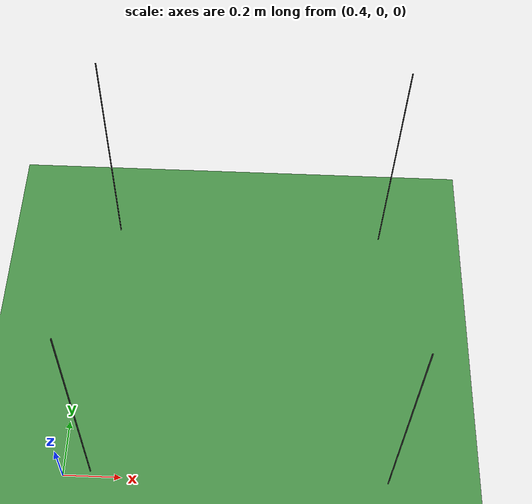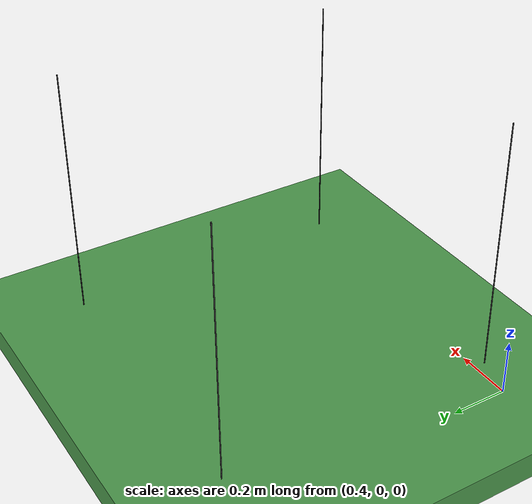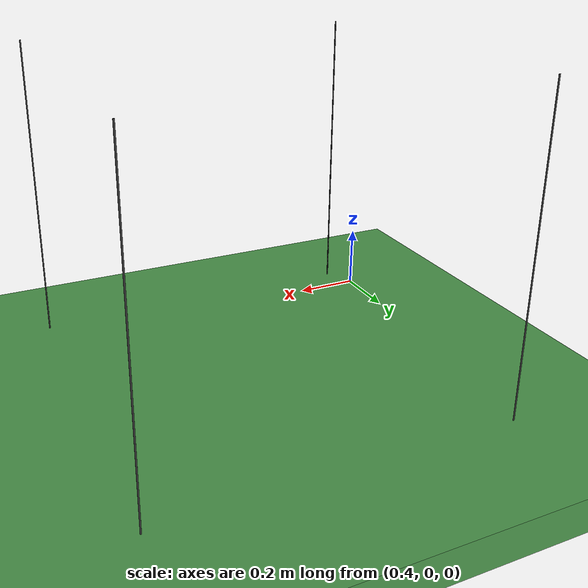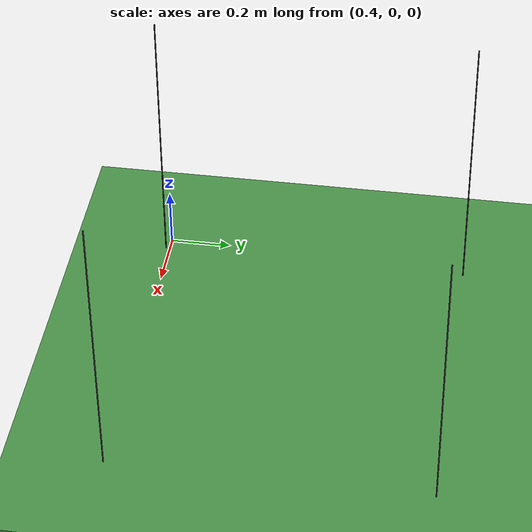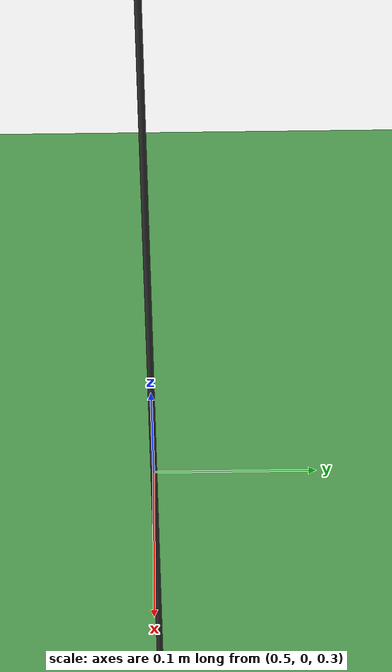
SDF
<sdf version="1.6">
 <world name="quadcopter">
  <physics name="1ms" type="ignored">
   <max_step_size>0.001</max_step_size>
   <real_time_factor>1.0</real_time_factor>
   <real_time_update_rate>500</real_time_update_rate>
  </physics>
  <plugin filename="ignition-gazebo-physics-system" name="gz::sim::systems::Physics"/>
  <plugin filename="ignition-gazebo-scene-broadcaster-system" name="gz::sim::systems::SceneBroadcaster"/>
  <plugin filename="ignition-gazebo-user-commands-system" name="gz::sim::systems::UserCommands"/>
  <scene><background>0.6 0.8 1.0 1</background><ambient>0.5 0.5 0.5 1</ambient></scene>
  <light type="directional" name="sun">
   <pose>0 0 10 0 0 0</pose>
   <diffuse>0.8 0.8 0.8 1</diffuse>
   <specular>0.2 0.2 0.2 1</specular>
   <attenuation>
    <range>1000</range>
    <constant>0.9</constant>
    <linear>0.01</linear>
    <quadratic>0.001</quadratic>
   </attenuation>
   <direction>-0.5 0.1 -0.9</direction>
  </light>
  <model name="ground_plane">
   <static>true</static>
   <link name="link">
    <collision name="collision">
     <geometry><plane><normal>0 0 1</normal><size>100 100</size></plane></geometry>
    </collision>
    <visual name="visual">
     <geometry><plane><normal>0 0 1</normal><size>100 100</size></plane></geometry>
     <material>
      <ambient>0.8 0.8 0.8 1</ambient>
      <diffuse>0.8 0.8 0.8 1</diffuse>
      <specular>0.8 0.8 0.8 1</specular>
     </material>
    </visual>
   </link>
  </model>
  <model name="cable_0">
   <pose>1.5 0.0 0.5 0 0 0</pose>
   <link name="cable_link">
    <inertial>
     <mass>0.01</mass>
     <inertia><ixx>0.001</ixx><ixy>0</ixy><ixz>0</ixz><iyy>0.001</iyy><iyz>0</iyz><izz>1e-6</izz></inertia>
    </inertial>
    <visual name="visual">
     <geometry><cylinder><radius>0.002</radius><length>0.9</length></cylinder></geometry>
     <material><ambient>0.1 0.1 0.1 1</ambient><diffuse>0.2 0.2 0.2 1</diffuse></material>
    </visual>
    <collision name="collision">
     <geometry><cylinder><radius>0.002</radius><length>0.9</length></cylinder></geometry>
    </collision>
   </link>
   <joint name="cable_to_drone_0" type="ball">
    <parent>x3_drone0::base_link</parent>
    <child>cable_link</child>
    <pose>0 0 0.45 0 0 0</pose>
   </joint>
   <joint name="cable_to_payload_0" type="ball">
    <parent>cable_link</parent>
    <child>payload::cable_attach_0</child>
    <pose>0 0 -0.45 0 0 0</pose>
   </joint>
  </model>
  <model name="cable_1">
   <pose>0.5 0.0 0.5 0 0 0</pose>
   <link name="cable_link">
    <inertial>
     <mass>0.01</mass>
     <inertia><ixx>0.001</ixx><ixy>0</ixy><ixz>0</ixz><iyy>0.001</iyy><iyz>0</iyz><izz>1e-6</izz></inertia>
    </inertial>
    <visual name="visual">
     <geometry><cylinder><radius>0.002</radius><length>0.9</length></cylinder></geometry>
     <material><ambient>0.1 0.1 0.1 1</ambient><diffuse>0.2 0.2 0.2 1</diffuse></material>
    </visual>
    <collision name="collision">
     <geometry><cylinder><radius>0.002</radius><length>0.9</length></cylinder></geometry>
    </collision>
   </link>
   <joint name="cable_to_drone_1" type="ball">
    <parent>x3_drone1::base_link</parent>
    <child>cable_link</child>
    <pose>0 0 0.45 0 0 0</pose>
   </joint>
   <joint name="cable_to_payload_1" type="ball">
    <parent>cable_link</parent>
    <child>payload::cable_attach_1</child>
    <pose>0 0 -0.45 0 0 0</pose>
   </joint>
  </model>
  <model name="cable_2">
   <pose>0.5 1.0 0.5 0 0 0</pose>
   <link name="cable_link">
    <inertial>
     <mass>0.01</mass>
     <inertia><ixx>0.001</ixx><ixy>0</ixy><ixz>0</ixz><iyy>0.001</iyy><iyz>0</iyz><izz>1e-6</izz></inertia>
    </inertial>
    <visual name="visual">
     <geometry><cylinder><radius>0.002</radius><length>0.9</length></cylinder></geometry>
     <material><ambient>0.1 0.1 0.1 1</ambient><diffuse>0.2 0.2 0.2 1</diffuse></material>
    </visual>
    <collision name="collision">
     <geometry><cylinder><radius>0.002</radius><length>0.9</length></cylinder></geometry>
    </collision>
   </link>
   <joint name="cable_to_drone_2" type="ball">
    <parent>x3_drone2::base_link</parent>
    <child>cable_link</child>
    <pose>0 0 0.45 0 0 0</pose>
   </joint>
   <joint name="cable_to_payload_2" type="ball">
    <parent>cable_link</parent>
    <child>payload::cable_attach_2</child>
    <pose>0 0 -0.45 0 0 0</pose>
   </joint>
  </model>
  <model name="cable_3">
   <pose>1.5 1.0 0.5 0 0 0</pose>
   <link name="cable_link">
    <inertial>
     <mass>0.01</mass>
     <inertia><ixx>0.001</ixx><ixy>0</ixy><ixz>0</ixz><iyy>0.001</iyy><iyz>0</iyz><izz>1e-6</izz></inertia>
    </inertial>
    <visual name="visual">
     <geometry><cylinder><radius>0.002</radius><length>0.9</length></cylinder></geometry>
     <material><ambient>0.1 0.1 0.1 1</ambient><diffuse>0.2 0.2 0.2 1</diffuse></material>
    </visual>
    <collision name="collision">
     <geometry><cylinder><radius>0.002</radius><length>0.9</length></cylinder></geometry>
    </collision>
   </link>
   <joint name="cable_to_drone_3" type="ball">
    <parent>x3_drone3::base_link</parent>
    <child>cable_link</child>
    <pose>0 0 0.45 0 0 0</pose>
   </joint>
   <joint name="cable_to_payload_3" type="ball">
    <parent>cable_link</parent>
    <child>payload::cable_attach_3</child>
    <pose>0 0 -0.45 0 0 0</pose>
   </joint>
  </model>
  <plugin filename="gz-sim-sensors-system" name="gz::sim::systems::Sensors"/>
  <model name="floor">
   <static>true</static>
   <link name="link">
    <collision name="col">
     <geometry><plane><normal>0 0 1</normal><size>100 100</size></plane></geometry>
    </collision>
    <visual name="vis">
     <geometry><plane><normal>0 0 1</normal><size>100 100</size></plane></geometry>
     <material>
      <ambient>0.2 0.5 0.2 1</ambient>
      <diffuse>0.3 0.6 0.3 1</diffuse>
      <specular>0.05 0.05 0.05 1</specular>
     </material>
    </visual>
   </link>
  </model>
 </world>
</sdf>
